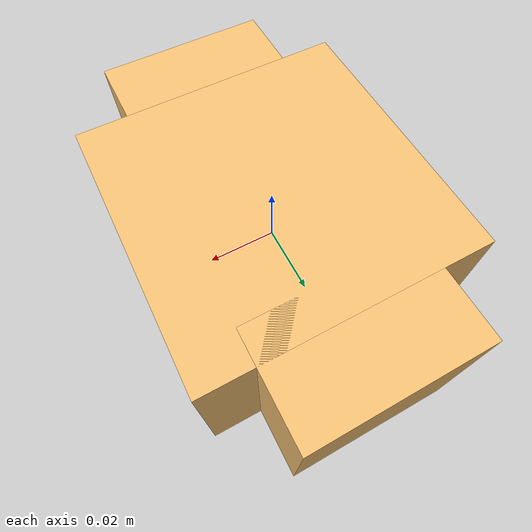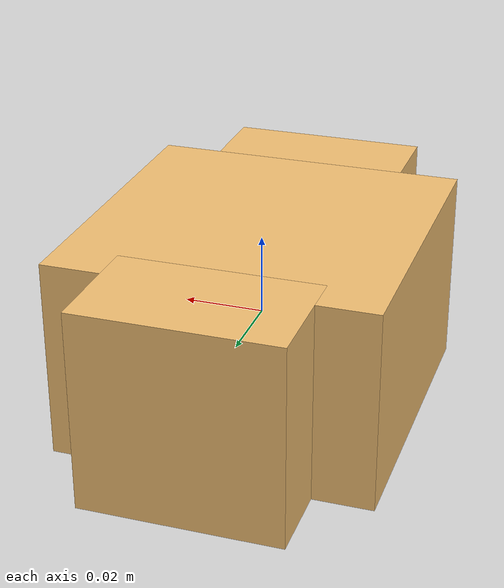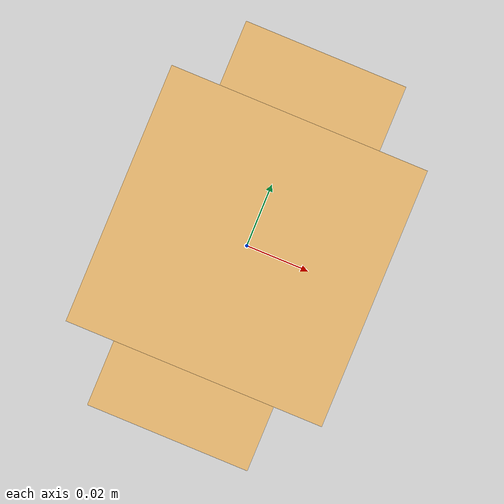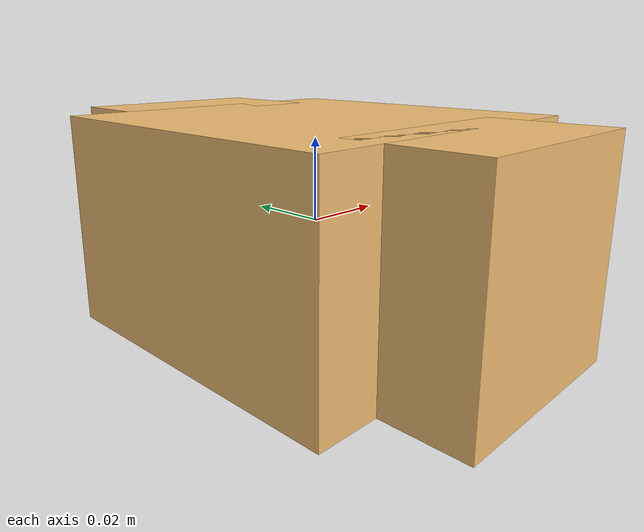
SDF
<?xml version="1.0" ?>
<sdf version="1.7">
  <model name="left_hand">
    <static>false</static>
    <link name="left_hand">
      <inertial><mass>0.5</mass><pose>0 0 0 0 0 0</pose>
        <inertia><ixx>0.001</ixx><ixy>0</ixy><ixz>0</ixz><iyy>0.001</iyy><iyz>0</iyz><izz>0.001</izz></inertia>
      </inertial>
      <visual name="hand_palm_vis">
        <pose>0 0 0 3.14159265359 3.14159265359 0</pose>
        <geometry><box><size>0.08 0.08 0.05</size></box></geometry>
        <material><diffuse>0.95 0.75 0.45 1</diffuse></material>
      </visual>
      <visual name="hand_finger_upper_vis">
        <pose>0 0.045 0 3.14159265359 3.14159265359 0</pose>
        <geometry><box><size>0.05 0.03 0.05</size></box></geometry>
        <material><diffuse>0.95 0.75 0.45 1</diffuse></material>
      </visual>
      <visual name="hand_finger_lower_vis">
        <pose>0 -0.045 0 3.14159265359 3.14159265359 0</pose>
        <geometry><box><size>0.05 0.03 0.05</size></box></geometry>
        <material><diffuse>0.95 0.75 0.45 1</diffuse></material>
      </visual>
      <collision name="hand_palm_col">
        <pose>0 0 0 3.14159265359 3.14159265359 0</pose>
        <geometry><box><size>0.08 0.08 0.05</size></box></geometry>
      </collision>
      <collision name="hand_finger_upper_col">
        <pose>0 0.045 0 3.14159265359 3.14159265359 0</pose>
        <geometry><box><size>0.05 0.03 0.05</size></box></geometry>
      </collision>
      <collision name="hand_finger_lower_col">
        <pose>0 -0.045 0 3.14159265359 3.14159265359 0</pose>
        <geometry><box><size>0.05 0.03 0.05</size></box></geometry>
      </collision>
    </link>
  </model>
</sdf>
